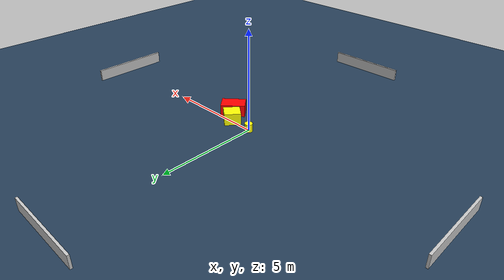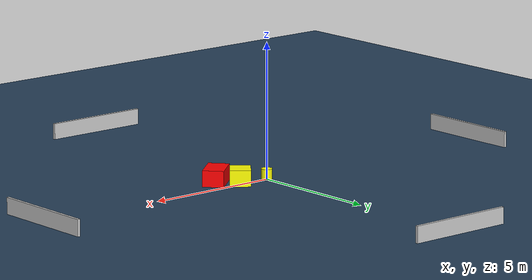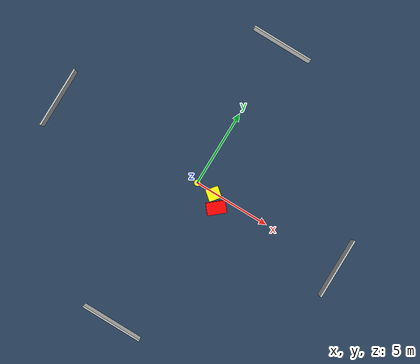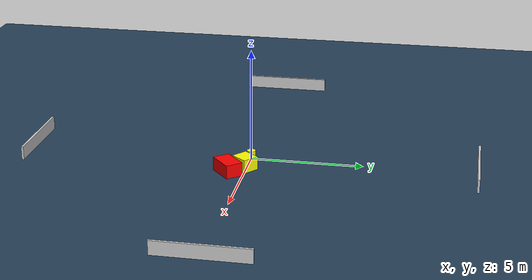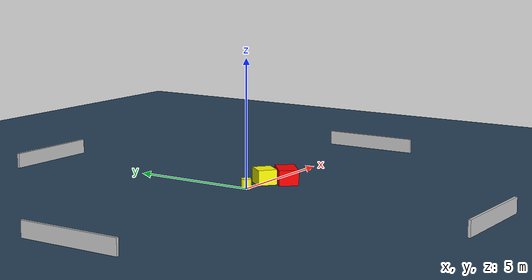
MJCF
<?xml version="1.0" ?>
<mujoco model="generated_environment">
  <option timestep="0.01" integrator="RK4" cone="elliptic"/>
  <default>
    <geom density="1"/>
  </default>
  <asset>
    <texture builtin="gradient" height="3072" name="skybox" rgb1="0.3 0.5 0.7" rgb2="0 0 0" type="skybox" width="512"/>
    <texture builtin="checker" height="300" name="groundplane" rgb1="0.2 0.3 0.4" rgb2="0.1 0.2 0.3" type="2d" width="300"/>
    <material name="groundplane" reflectance="0.2" texrepeat="5 5" texture="groundplane"/>
  </asset>
  <worldbody>
    <light dir="0 0 -1" directional="true" pos="0 0 1.5"/>
    <geom condim="3" friction="0.5 0.005 0.001" material="groundplane" name="floor" pos="0 0 0" size="0 0 0.05" type="plane"/>
    <body name="walls">
      <geom name="wall_1" condim="4" pos="-10.0 0.0 0.3" rgba="0.800000011920929 0.800000011920929 0.800000011920929 1.0" size="0.05 2.0 0.3" type="box"/>
      <geom name="wall_2" condim="4" pos="10.0 0.0 0.3" rgba="0.800000011920929 0.800000011920929 0.800000011920929 1.0" size="0.05 2.0 0.3" type="box"/>
      <geom name="wall_3" condim="4" pos="0.0 -10.0 0.3" rgba="0.800000011920929 0.800000011920929 0.800000011920929 1.0" size="2.0 0.05 0.3" type="box"/>
      <geom name="wall_4" condim="4" pos="0.0 10.0 0.3" rgba="0.800000011920929 0.800000011920929 0.800000011920929 1.0" size="2.0 0.05 0.3" type="box"/>
    </body>
    <body name="robot">
      <joint name="joint_x" type="slide" pos="0 0 0" axis="1 0 0"/>
      <joint name="joint_y" type="slide" pos="0 0 0" axis="0 1 0"/>
      <geom name="robot" type="cylinder" pos="0.0 0.0 0.2" size="0.2 0.2 0.0" mass="5.0" friction="1.0 0.005 0.0001" condim="4" rgba="1.0 1.0 0.0 1.0"/>
    </body>
    <body name="obstacle_1_movable">
      <geom name="obstacle_1_movable" condim="4" pos="1.1978110338867936 -0.05572555415865865 0.3" euler="0 0 321.01996220701164" friction="0.0 0.005 0.001" rgba="1.0 1.0 0.0 1.0" size="0.37793244726070524 0.40539111895261637 0.3" type="box" mass="0.1"/>
      <joint type="free"/>
    </body>
    <body name="obstacle_2_static">
      <geom name="obstacle_2_static" condim="4" pos="1.7809840078339123 -0.7055426542742474 0.3" euler="0 0 130.35689036351428" friction="0.0 0.005 0.001" rgba="1.0 0.0 0.0 1.0" size="0.3878964968196502 0.6034133720534428 0.3" type="box"/>
    </body>
  </worldbody>
  <actuator>
    <motor name="actuator_x" joint="joint_x" gear="1" ctrlrange="-1 1"/>
    <motor name="actuator_y" joint="joint_y" gear="1" ctrlrange="-1 1"/>
  </actuator>
</mujoco>
